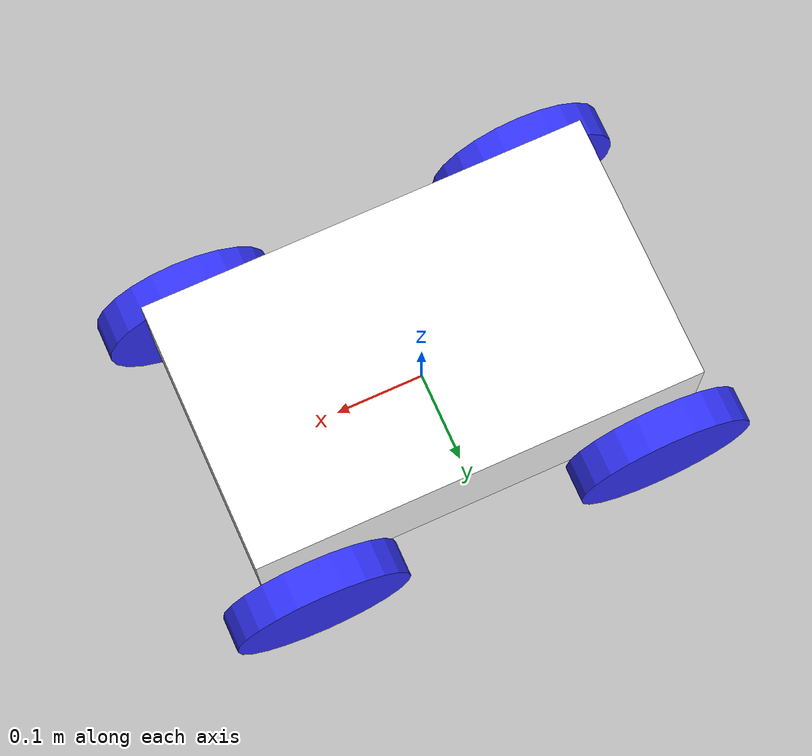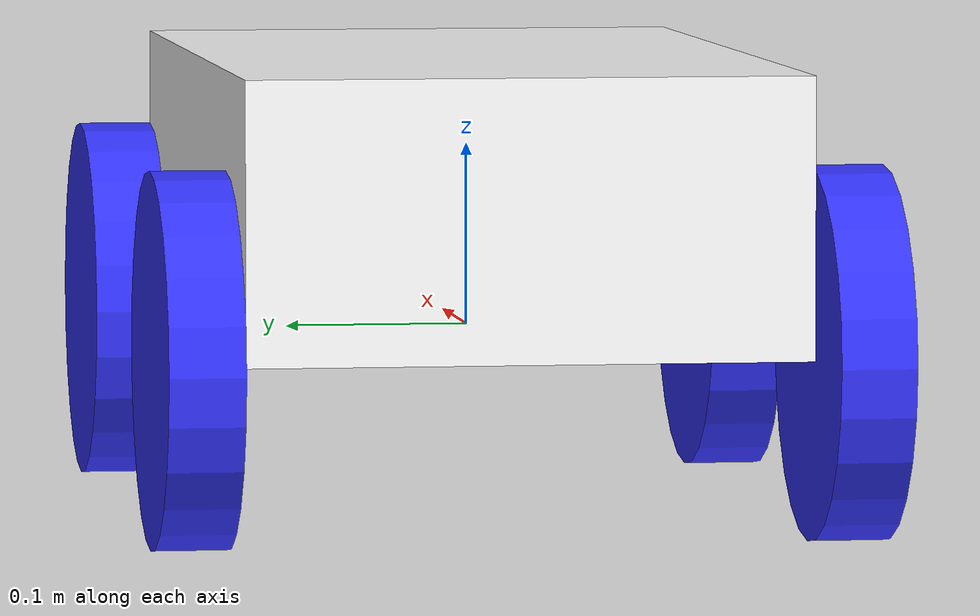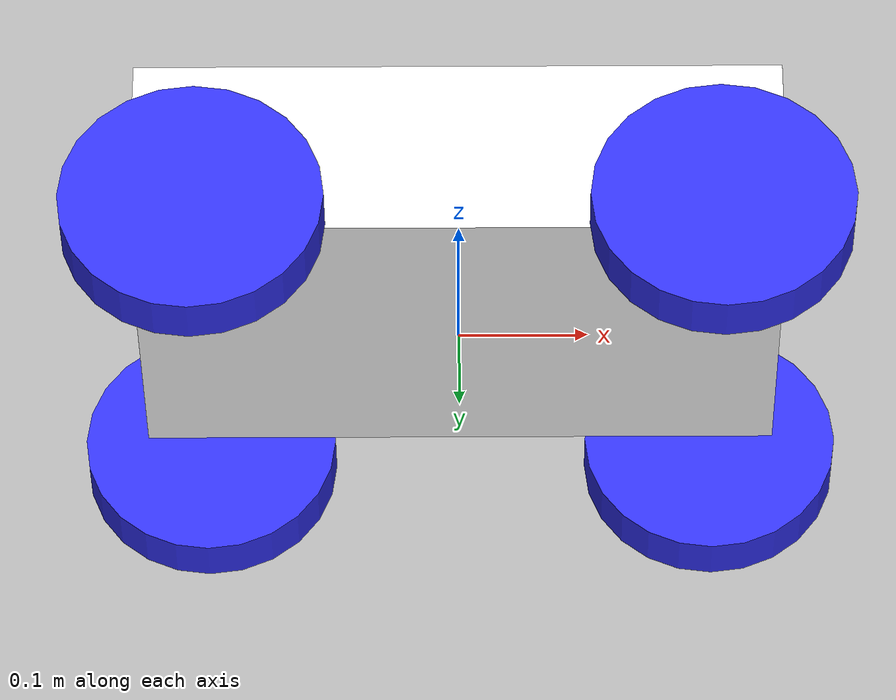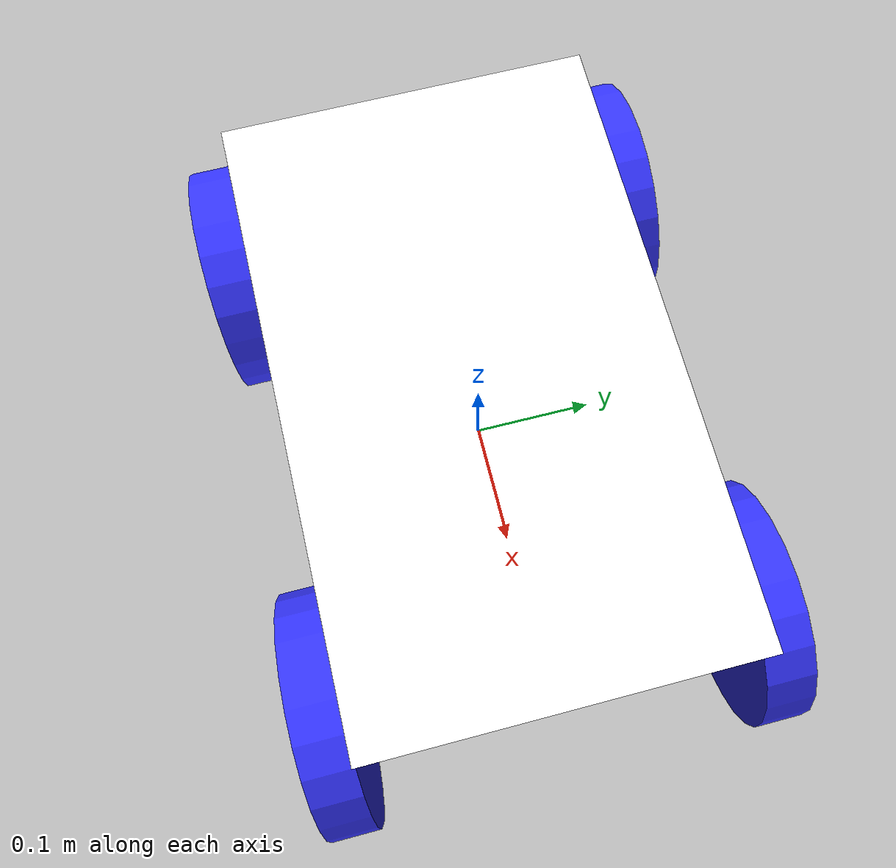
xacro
<?xml version="1.0"?>
<robot xmlns:xacro="http://www.ros.org/wiki/xacro">

    <xacro:include filename="inertial.macros.xacro"/>

    <!-- Materials -->
    <material name="white">
        <color rgba="1 1 1 1" />
    </material>

    <material name="orange">
        <color rgba="1 0.3 0.1 1"/>
    </material>

    <material name="blue">
        <color rgba="0.2 0.2 1 1"/>
    </material>

    <material name="black">
        <color rgba="0 0 0 1"/>
    </material>

    <material name="red">
        <color rgba="1 0 0 1"/>
    </material>

    <!-- Base Footprint -->
    <link name="base_footprint"/>

    <!-- Base Link -->
    <link name="base_link">

    </link>

    <!-- Base Footprint -->

    <joint name="base_footprint_joint" type="fixed">
        <parent link="base_footprint"/>
        <child link="base_link"/>
        <origin xyz="0 0 0"/>
    </joint>

    <!-- Chassis -->
    <joint name="chassis_joint" type="fixed">
        <parent link="base_link"/>
        <child link="chassis"/>
        <origin xyz="-0.15 0 0"/>
    </joint>

    <link name="chassis">
        <visual>
            <origin xyz="0.15 0 0.075"/>
            <geometry>
                <box size="0.5 0.3 0.15"/>
            </geometry>
            <material name="white"/>
        </visual>
        <collision>
            <origin xyz="0.15 0 0.075"/>
            <geometry>
                <box size="0.5 0.3 0.15"/>
            </geometry>
        </collision>
        <xacro:inertial_box mass="0.5" x="0.5" y="0.3" z="0.15">
            <origin xyz="0.15 0 0.075" rpy="0 0 0"/>
        </xacro:inertial_box>
    </link>

    <gazebo reference="chassis">
        <material>Gazebo/White</material>
    </gazebo>

    <!-- Front Left Wheel -->
    <joint name="front_left_wheel_joint" type="continuous">
        <parent link="base_link"/>
        <child link="front_left_wheel"/>
        <origin xyz="0.2 0.175 0" rpy="-${pi/2} 0 0"/>
        <axis xyz="0 0 1"/>

    </joint>

    <link name="front_left_wheel">
        <visual>
            <geometry>
                <cylinder radius="0.1" length="0.04"/>
            </geometry>
            <material name="blue"/>
        </visual>
        <collision>
            <geometry>
                <cylinder radius="0.1" length="0.04"/>
            </geometry>
        </collision>
        <xacro:inertial_cylinder mass="0.1" length="0.04" radius="0.1">
            <origin xyz="0 0 0" rpy="0 0 0"/>
        </xacro:inertial_cylinder>
    </link>

    <gazebo reference="front_left_wheel">
        <material>Gazebo/Black</material>
    </gazebo>

    <!-- Front Right Wheel -->
    <joint name="front_right_wheel_joint" type="continuous">
        <parent link="base_link"/>
        <child link="front_right_wheel"/>
        <origin xyz="0.2 -0.175 0" rpy="${pi/2} 0 0"/>
        <axis xyz="0 0 -1"/>

    </joint>

    <link name="front_right_wheel">
        <visual>
            <geometry>
                <cylinder radius="0.1" length="0.04"/>
            </geometry>
            <material name="blue"/>
        </visual>
        <collision>
            <geometry>
                <cylinder radius="0.1" length="0.04"/>
            </geometry>
        </collision>
        <xacro:inertial_cylinder mass="0.1" length="0.04" radius="0.1">
            <origin xyz="0 0 0" rpy="0 0 0"/>
        </xacro:inertial_cylinder>
    </link>

    <gazebo reference="front_right_wheel">
        <material>Gazebo/Black</material>

    </gazebo>

    <!-- Rear Left Wheel -->
    <joint name="rear_left_wheel_joint" type="continuous">
        <parent link="base_link"/>
        <child link="rear_left_wheel"/>
        <origin xyz="-0.2 0.175 0" rpy="-${pi/2} 0 0"/>
        <axis xyz="0 0 1"/>

    </joint>

    <link name="rear_left_wheel">
        <visual>
            <geometry>
                <cylinder radius="0.1" length="0.04"/>
            </geometry>
            <material name="blue"/>
        </visual>
        <collision>
            <geometry>
                <cylinder radius="0.1" length="0.04"/>
            </geometry>
        </collision>
        <xacro:inertial_cylinder mass="0.1" length="0.04" radius="0.1">
            <origin xyz="0 0 0" rpy="0 0 0"/>
        </xacro:inertial_cylinder>
    </link>

    <gazebo reference="rear_left_wheel">
        <material>Gazebo/Black</material>
    </gazebo>

    <!-- Rear Right Wheel -->
    <joint name="rear_right_wheel_joint" type="continuous">
        <parent link="base_link"/>
        <child link="rear_right_wheel"/>
        <origin xyz="-0.2 -0.175 0" rpy="${pi/2} 0 0"/>
        <axis xyz="0 0 -1"/>

    </joint>

    <link name="rear_right_wheel">
        <visual>
            <geometry>
                <cylinder radius="0.1" length="0.04"/>
            </geometry>
            <material name="blue"/>
        </visual>
        <collision>
            <geometry>
                <cylinder radius="0.1" length="0.04"/>
            </geometry>
        </collision>
        <xacro:inertial_cylinder mass="0.1" length="0.04" radius="0.1">
            <origin xyz="0 0 0" rpy="0 0 0"/>
        </xacro:inertial_cylinder>
    </link>

    <gazebo reference="rear_right_wheel">
        <material>Gazebo/Black</material>
    </gazebo>

</robot>

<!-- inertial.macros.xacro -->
<robot xmlns:xacro="http://www.ros.org/wiki/xacro" >

    <!-- Specify some standard inertial calculations https://en.wikipedia.org/wiki/List_of_moments_of_inertia -->
    <!-- These make use of xacro's mathematical functionality -->

    <xacro:macro name="inertial_box" params="mass x y z *origin">
        <inertial>
            <xacro:insert_block name="origin"/>
            <mass value="${mass}" />
            <inertia ixx="${(1/12) * mass * (y*y+z*z)}" ixy="0.0" ixz="0.0"
                    iyy="${(1/12) * mass * (x*x+z*z)}" iyz="0.0"
                    izz="${(1/12) * mass * (x*x+y*y)}" />
        </inertial>
    </xacro:macro>

    <xacro:macro name="inertial_cylinder" params="mass length radius *origin">
        <inertial>
            <xacro:insert_block name="origin"/>
            <mass value="${mass}" />
            <inertia ixx="${(1/12) * mass * (3*radius*radius + length*length)}" ixy="0.0" ixz="0.0"
                    iyy="${(1/12) * mass * (3*radius*radius + length*length)}" iyz="0.0"
                    izz="${(1/2) * mass * (radius*radius)}" />
        </inertial>
    </xacro:macro>

    <xacro:macro name="inertial_sphere" params="mass radius *origin">
        <inertial>
            <xacro:insert_block name="origin"/>
            <mass value="${mass}" />
            <inertia ixx="${(2/5) * mass * (radius*radius)}" ixy="0.0" ixz="0.0"
                    iyy="${(2/5) * mass * (radius*radius)}" iyz="0.0"
                    izz="${(2/5) * mass * (radius*radius)}" />
        </inertial>
    </xacro:macro>

</robot>
